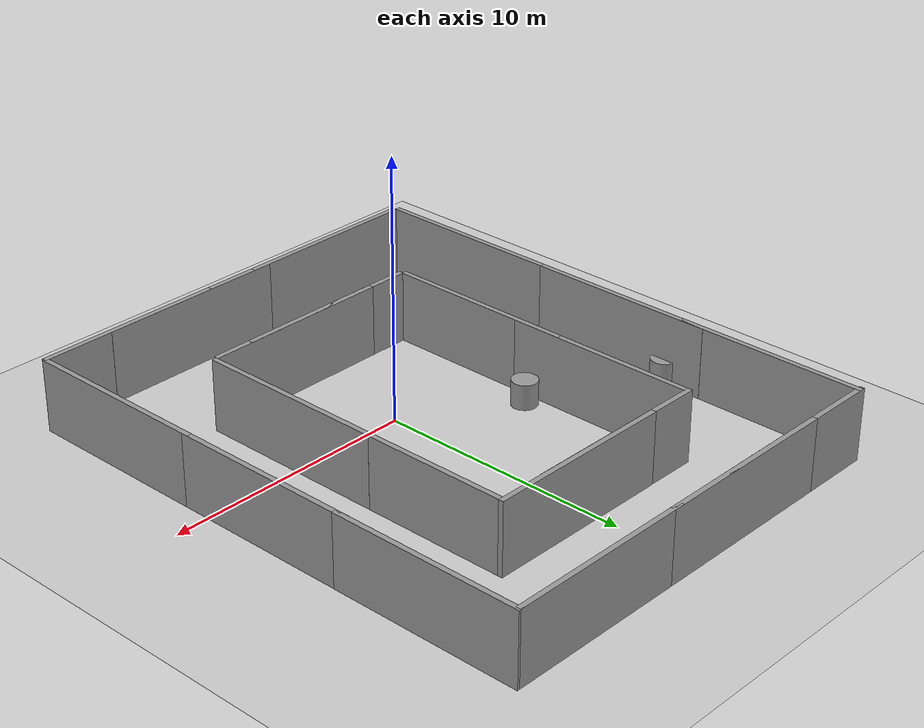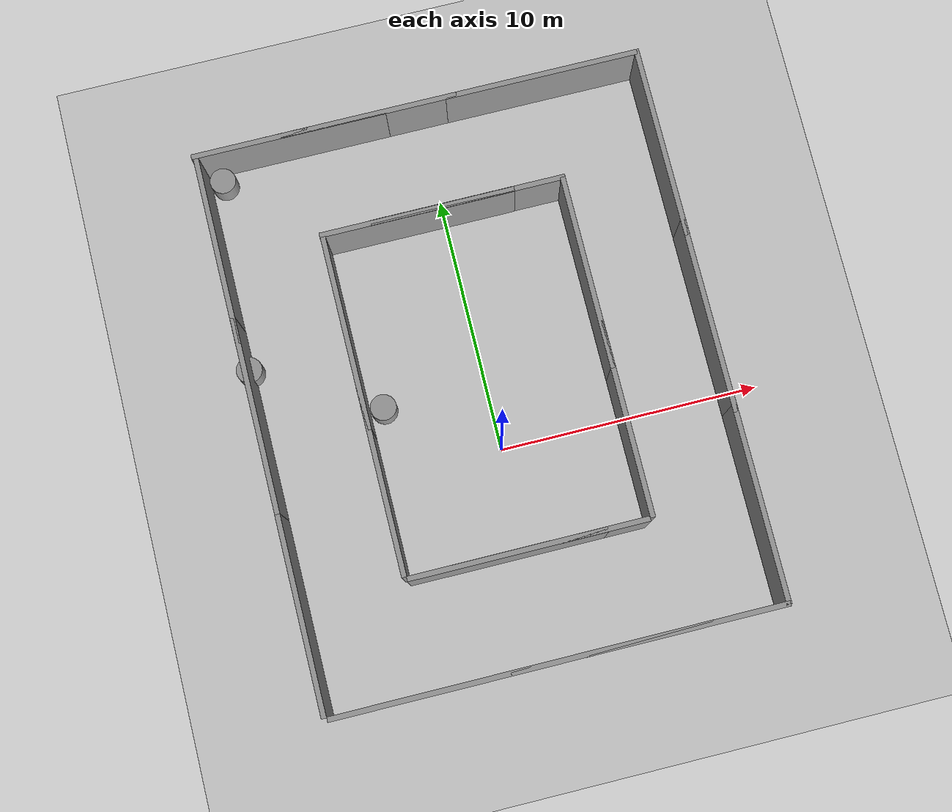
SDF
<sdf version="1.6">
 <world name="default">
  <light name="sun" type="directional">
   <pose>0 0 10 0 -0 0</pose>
   <diffuse>0.8 0.8 0.8 1</diffuse>
   <specular>0.2 0.2 0.2 1</specular>
   <attenuation>
    <range>1000</range>
    <constant>0.9</constant>
    <linear>0.01</linear>
    <quadratic>0.001</quadratic>
   </attenuation>
   <direction>-0.5 0.1 -0.9</direction>
  </light>
  <model name="ground_plane">
   <static>1</static>
   <link name="link">
    <collision name="collision">
     <geometry><plane><normal>0 0 1</normal><size>100 100</size></plane></geometry>
     <surface>
      <contact><collide_bitmask>65535</collide_bitmask></contact>
      <friction><ode><mu>100</mu><mu2>50</mu2></ode></friction>
     </surface>
    </collision>
    <visual name="visual">
     <cast_shadows>0</cast_shadows>
     <geometry><plane><normal>0 0 1</normal><size>100 100</size></plane></geometry>
     <material>
      <script><uri>file://media/materials/scripts/gazebo.material</uri><name>Gazebo/Grey</name></script>
     </material>
    </visual>
   </link>
  </model>
  <gravity>0 0 -9.8</gravity>
  <magnetic_field>6e-06 2.3e-05 -4.2e-05</magnetic_field>
  <atmosphere type="adiabatic"/>
  <physics name="default_physics" default="0" type="ode"><max_step_size>0.003</max_step_size></physics>
  <scene><ambient>0.4 0.4 0.4 1</ambient><background>0.7 0.7 0.7 1</background><shadows>1</shadows></scene>
  <audio><device>default</device></audio>
  <spherical_coordinates>
   <surface_model>EARTH_WGS84</surface_model>
   <latitude_deg>0</latitude_deg>
   <longitude_deg>0</longitude_deg>
   <elevation>0</elevation>
   <heading_deg>0</heading_deg>
  </spherical_coordinates>
  <model name="grey_wall">
   <static>1</static>
   <link name="link">
    <pose>0 0 1.4 0 -0 0</pose>
    <collision name="collision"><geometry><box><size>7.5 0.2 2.8</size></box></geometry></collision>
    <visual name="visual">
     <cast_shadows>0</cast_shadows>
     <geometry><box><size>7.5 0.2 2.8</size></box></geometry>
     <material>
      <script>
       <uri>model://grey_wall/materials/scripts</uri>
       <uri>model://grey_wall/materials/textures</uri>
       <name>vrc/grey_wall</name>
      </script>
     </material>
    </visual>
   </link>
   <pose>-0.815504 -4.10264 0 0 -0 0</pose>
  </model>
  <model name="grey_wall_clone">
   <static>1</static>
   <link name="link">
    <pose>0 0 1.4 0 -0 0</pose>
    <collision name="collision"><geometry><box><size>7.5 0.2 2.8</size></box></geometry></collision>
    <visual name="visual">
     <cast_shadows>0</cast_shadows>
     <geometry><box><size>7.5 0.2 2.8</size></box></geometry>
     <material>
      <script>
       <uri>model://grey_wall/materials/scripts</uri>
       <uri>model://grey_wall/materials/textures</uri>
       <name>vrc/grey_wall</name>
      </script>
     </material>
    </visual>
   </link>
   <pose>0.770731 -4.09764 0 0 -0 0</pose>
  </model>
  <model name="grey_wall_clone_0">
   <static>1</static>
   <link name="link">
    <pose>0 0 1.4 0 -0 0</pose>
    <collision name="collision"><geometry><box><size>7.5 0.2 2.8</size></box></geometry></collision>
    <visual name="visual">
     <cast_shadows>0</cast_shadows>
     <geometry><box><size>7.5 0.2 2.8</size></box></geometry>
     <material>
      <script>
       <uri>model://grey_wall/materials/scripts</uri>
       <uri>model://grey_wall/materials/textures</uri>
       <name>vrc/grey_wall</name>
      </script>
     </material>
    </visual>
   </link>
   <pose>4.61467 -0.333528 0 0 -0 1.57324</pose>
  </model>
  <model name="grey_wall_clone_0_clone">
   <static>1</static>
   <link name="link">
    <pose>0 0 1.4 0 -0 0</pose>
    <collision name="collision"><geometry><box><size>7.5 0.2 2.8</size></box></geometry></collision>
    <visual name="visual">
     <cast_shadows>0</cast_shadows>
     <geometry><box><size>7.5 0.2 2.8</size></box></geometry>
     <material>
      <script>
       <uri>model://grey_wall/materials/scripts</uri>
       <uri>model://grey_wall/materials/textures</uri>
       <name>vrc/grey_wall</name>
      </script>
     </material>
    </visual>
   </link>
   <pose>4.59986 5.35281 0 0 -0 1.57324</pose>
  </model>
  <model name="grey_wall_clone_0_clone_0">
   <static>1</static>
   <link name="link">
    <pose>0 0 1.4 0 -0 0</pose>
    <collision name="collision"><geometry><box><size>7.5 0.2 2.8</size></box></geometry></collision>
    <visual name="visual">
     <cast_shadows>0</cast_shadows>
     <geometry><box><size>7.5 0.2 2.8</size></box></geometry>
     <material>
      <script>
       <uri>model://grey_wall/materials/scripts</uri>
       <uri>model://grey_wall/materials/textures</uri>
       <name>vrc/grey_wall</name>
      </script>
     </material>
    </visual>
   </link>
   <pose>-4.65871 5.26223 0 0 -0 1.57324</pose>
  </model>
  <model name="grey_wall_clone_0_clone_1">
   <static>1</static>
   <link name="link">
    <pose>0 0 1.4 0 -0 0</pose>
    <collision name="collision"><geometry><box><size>7.5 0.2 2.8</size></box></geometry></collision>
    <visual name="visual">
     <cast_shadows>0</cast_shadows>
     <geometry><box><size>7.5 0.2 2.8</size></box></geometry>
     <material>
      <script>
       <uri>model://grey_wall/materials/scripts</uri>
       <uri>model://grey_wall/materials/textures</uri>
       <name>vrc/grey_wall</name>
      </script>
     </material>
    </visual>
   </link>
   <pose>-4.64754 -0.266169 0 0 -0 1.57324</pose>
  </model>
  <model name="grey_wall_clone_clone">
   <static>1</static>
   <link name="link">
    <pose>0 0 1.4 0 -0 0</pose>
    <collision name="collision"><geometry><box><size>7.5 0.2 2.8</size></box></geometry></collision>
    <visual name="visual">
     <cast_shadows>0</cast_shadows>
     <geometry><box><size>7.5 0.2 2.8</size></box></geometry>
     <material>
      <script>
       <uri>model://grey_wall/materials/scripts</uri>
       <uri>model://grey_wall/materials/textures</uri>
       <name>vrc/grey_wall</name>
      </script>
     </material>
    </visual>
   </link>
   <pose>-1.03053 9.09232 0 0 -0 0</pose>
  </model>
  <model name="grey_wall_clone_clone_0">
   <static>1</static>
   <link name="link">
    <pose>0 0 1.4 0 -0 0</pose>
    <collision name="collision"><geometry><box><size>7.5 0.2 2.8</size></box></geometry></collision>
    <visual name="visual">
     <cast_shadows>0</cast_shadows>
     <geometry><box><size>7.5 0.2 2.8</size></box></geometry>
     <material>
      <script>
       <uri>model://grey_wall/materials/scripts</uri>
       <uri>model://grey_wall/materials/textures</uri>
       <name>vrc/grey_wall</name>
      </script>
     </material>
    </visual>
   </link>
   <pose>0.942885 9.10476 0 0 -0 0</pose>
  </model>
  <model name="grey_wall_clone_clone_1">
   <static>1</static>
   <link name="link">
    <pose>0 0 1.4 0 -0 0</pose>
    <collision name="collision"><geometry><box><size>7.5 0.2 2.8</size></box></geometry></collision>
    <visual name="visual">
     <cast_shadows>0</cast_shadows>
     <geometry><box><size>7.5 0.2 2.8</size></box></geometry>
     <material>
      <script>
       <uri>model://grey_wall/materials/scripts</uri>
       <uri>model://grey_wall/materials/textures</uri>
       <name>vrc/grey_wall</name>
      </script>
     </material>
    </visual>
   </link>
   <pose>-4.71987 -8.26369 0 0 -0 0</pose>
  </model>
  <model name="unit_cylinder">
   <pose>-3.99794 2.50682 0.499996 3e-06 1e-06 0.000406</pose>
   <link name="link">
    <inertial>
     <mass>1</mass>
     <inertia><ixx>0.145833</ixx><ixy>0</ixy><ixz>0</ixz><iyy>0.145833</iyy><iyz>0</iyz><izz>0.125</izz></inertia>
    </inertial>
    <collision name="collision">
     <geometry><cylinder><radius>0.5</radius><length>1</length></cylinder></geometry>
    </collision>
    <visual name="visual">
     <geometry><cylinder><radius>0.5</radius><length>1</length></cylinder></geometry>
     <material>
      <script><name>Gazebo/Grey</name><uri>file://media/materials/scripts/gazebo.material</uri></script>
     </material>
    </visual>
   </link>
  </model>
  <model name="grey_wall_clone_clone_1_clone">
   <static>1</static>
   <link name="link">
    <pose>0 0 1.4 0 -0 0</pose>
    <collision name="collision"><geometry><box><size>7.5 0.2 2.8</size></box></geometry></collision>
    <visual name="visual">
     <cast_shadows>0</cast_shadows>
     <geometry><box><size>7.5 0.2 2.8</size></box></geometry>
     <material>
      <script>
       <uri>model://grey_wall/materials/scripts</uri>
       <uri>model://grey_wall/materials/textures</uri>
       <name>vrc/grey_wall</name>
      </script>
     </material>
    </visual>
   </link>
   <pose>2.0288 -8.26156 0 0 -0 0</pose>
  </model>
  <model name="grey_wall_clone_clone_1_clone_0">
   <static>1</static>
   <link name="link">
    <pose>0 0 1.4 0 -0 0</pose>
    <collision name="collision"><geometry><box><size>7.5 0.2 2.8</size></box></geometry></collision>
    <visual name="visual">
     <cast_shadows>0</cast_shadows>
     <geometry><box><size>7.5 0.2 2.8</size></box></geometry>
     <material>
      <script>
       <uri>model://grey_wall/materials/scripts</uri>
       <uri>model://grey_wall/materials/textures</uri>
       <name>vrc/grey_wall</name>
      </script>
     </material>
    </visual>
   </link>
   <pose>4.88858 -8.26329 0 0 -0 0</pose>
  </model>
  <model name="grey_wall_clone_clone_1_clone_0_clone">
   <static>1</static>
   <link name="link">
    <pose>0 0 1.4 0 -0 0</pose>
    <collision name="collision"><geometry><box><size>7.5 0.2 2.8</size></box></geometry></collision>
    <visual name="visual">
     <cast_shadows>0</cast_shadows>
     <geometry><box><size>7.5 0.2 2.8</size></box></geometry>
     <material>
      <script>
       <uri>model://grey_wall/materials/scripts</uri>
       <uri>model://grey_wall/materials/textures</uri>
       <name>vrc/grey_wall</name>
      </script>
     </material>
    </visual>
   </link>
   <pose>4.8029 13.2117 0 0 -0 0</pose>
  </model>
  <model name="grey_wall_clone_clone_1_clone_0_clone_clone">
   <static>1</static>
   <link name="link">
    <pose>0 0 1.4 0 -0 0</pose>
    <collision name="collision"><geometry><box><size>7.5 0.2 2.8</size></box></geometry></collision>
    <visual name="visual">
     <cast_shadows>0</cast_shadows>
     <geometry><box><size>7.5 0.2 2.8</size></box></geometry>
     <material>
      <script>
       <uri>model://grey_wall/materials/scripts</uri>
       <uri>model://grey_wall/materials/textures</uri>
       <name>vrc/grey_wall</name>
      </script>
     </material>
    </visual>
   </link>
   <pose>-2.27101 13.212 0 0 -0 0</pose>
  </model>
  <model name="grey_wall_clone_clone_1_clone_0_clone_clone_0">
   <static>1</static>
   <link name="link">
    <pose>0 0 1.4 0 -0 0</pose>
    <collision name="collision"><geometry><box><size>7.5 0.2 2.8</size></box></geometry></collision>
    <visual name="visual">
     <cast_shadows>0</cast_shadows>
     <geometry><box><size>7.5 0.2 2.8</size></box></geometry>
     <material>
      <script>
       <uri>model://grey_wall/materials/scripts</uri>
       <uri>model://grey_wall/materials/textures</uri>
       <name>vrc/grey_wall</name>
      </script>
     </material>
    </visual>
   </link>
   <pose>-5.0324 13.2092 0 0 -0 0</pose>
  </model>
  <model name="grey_wall_clone_0_clone_2">
   <static>1</static>
   <link name="link">
    <pose>0 0 1.4 0 -0 0</pose>
    <collision name="collision"><geometry><box><size>7.5 0.2 2.8</size></box></geometry></collision>
    <visual name="visual">
     <cast_shadows>0</cast_shadows>
     <geometry><box><size>7.5 0.2 2.8</size></box></geometry>
     <material>
      <script>
       <uri>model://grey_wall/materials/scripts</uri>
       <uri>model://grey_wall/materials/textures</uri>
       <name>vrc/grey_wall</name>
      </script>
     </material>
    </visual>
   </link>
   <pose>8.57891 -4.55029 0 0 -0 1.57324</pose>
  </model>
  <model name="grey_wall_clone_0_clone_3">
   <static>1</static>
   <link name="link">
    <pose>0 0 1.4 0 -0 0</pose>
    <collision name="collision"><geometry><box><size>7.5 0.2 2.8</size></box></geometry></collision>
    <visual name="visual">
     <cast_shadows>0</cast_shadows>
     <geometry><box><size>7.5 0.2 2.8</size></box></geometry>
     <material>
      <script>
       <uri>model://grey_wall/materials/scripts</uri>
       <uri>model://grey_wall/materials/textures</uri>
       <name>vrc/grey_wall</name>
      </script>
     </material>
    </visual>
   </link>
   <pose>8.56139 2.67532 0 0 -0 1.57324</pose>
  </model>
  <model name="grey_wall_clone_0_clone_4">
   <static>1</static>
   <link name="link">
    <pose>0 0 1.4 0 -0 0</pose>
    <collision name="collision"><geometry><box><size>7.5 0.2 2.8</size></box></geometry></collision>
    <visual name="visual">
     <cast_shadows>0</cast_shadows>
     <geometry><box><size>7.5 0.2 2.8</size></box></geometry>
     <material>
      <script>
       <uri>model://grey_wall/materials/scripts</uri>
       <uri>model://grey_wall/materials/textures</uri>
       <name>vrc/grey_wall</name>
      </script>
     </material>
    </visual>
   </link>
   <pose>8.54785 9.5614 0 0 -0 1.57324</pose>
  </model>
  <model name="grey_wall_clone_0_clone_5">
   <static>1</static>
   <link name="link">
    <pose>0 0 1.4 0 -0 0</pose>
    <collision name="collision"><geometry><box><size>7.5 0.2 2.8</size></box></geometry></collision>
    <visual name="visual">
     <cast_shadows>0</cast_shadows>
     <geometry><box><size>7.5 0.2 2.8</size></box></geometry>
     <material>
      <script>
       <uri>model://grey_wall/materials/scripts</uri>
       <uri>model://grey_wall/materials/textures</uri>
       <name>vrc/grey_wall</name>
      </script>
     </material>
    </visual>
   </link>
   <pose>-8.61483 9.55749 0 0 -0 1.57324</pose>
  </model>
  <model name="grey_wall_clone_0_clone_6">
   <static>1</static>
   <link name="link">
    <pose>0 0 1.4 0 -0 0</pose>
    <collision name="collision"><geometry><box><size>7.5 0.2 2.8</size></box></geometry></collision>
    <visual name="visual">
     <cast_shadows>0</cast_shadows>
     <geometry><box><size>7.5 0.2 2.8</size></box></geometry>
     <material>
      <script>
       <uri>model://grey_wall/materials/scripts</uri>
       <uri>model://grey_wall/materials/textures</uri>
       <name>vrc/grey_wall</name>
      </script>
     </material>
    </visual>
   </link>
   <pose>-8.59354 3.04757 0 0 -0 1.57324</pose>
  </model>
  <model name="grey_wall_clone_0_clone_7">
   <static>1</static>
   <link name="link">
    <pose>0 0 1.4 0 -0 0</pose>
    <collision name="collision"><geometry><box><size>7.5 0.2 2.8</size></box></geometry></collision>
    <visual name="visual">
     <cast_shadows>0</cast_shadows>
     <geometry><box><size>7.5 0.2 2.8</size></box></geometry>
     <material>
      <script>
       <uri>model://grey_wall/materials/scripts</uri>
       <uri>model://grey_wall/materials/textures</uri>
       <name>vrc/grey_wall</name>
      </script>
     </material>
    </visual>
   </link>
   <pose>-8.57994 -4.44549 0 0 -0 1.57324</pose>
  </model>
  <model name="unit_cylinder_0">
   <pose>-7.98065 12.6028 0.499992 -3e-06 3e-06 0</pose>
   <link name="link">
    <inertial>
     <mass>1</mass>
     <inertia><ixx>0.145833</ixx><ixy>0</ixy><ixz>0</ixz><iyy>0.145833</iyy><iyz>0</iyz><izz>0.125</izz></inertia>
    </inertial>
    <collision name="collision">
     <geometry><cylinder><radius>0.5</radius><length>1</length></cylinder></geometry>
    </collision>
    <visual name="visual">
     <geometry><cylinder><radius>0.5</radius><length>1</length></cylinder></geometry>
     <material>
      <script><name>Gazebo/Grey</name><uri>file://media/materials/scripts/gazebo.material</uri></script>
     </material>
    </visual>
   </link>
  </model>
  <model name="unit_cylinder_1">
   <pose>-8.60145 5.11876 0.499993 -3e-06 3e-06 -0.000478</pose>
   <link name="link">
    <inertial>
     <mass>1</mass>
     <inertia><ixx>0.145833</ixx><ixy>0</ixy><ixz>0</ixz><iyy>0.145833</iyy><iyz>0</iyz><izz>0.125</izz></inertia>
    </inertial>
    <collision name="collision">
     <geometry><cylinder><radius>0.5</radius><length>1</length></cylinder></geometry>
    </collision>
    <visual name="visual">
     <geometry><cylinder><radius>0.5</radius><length>1</length></cylinder></geometry>
     <material>
      <script><name>Gazebo/Grey</name><uri>file://media/materials/scripts/gazebo.material</uri></script>
     </material>
    </visual>
   </link>
  </model>
 </world>
</sdf>
